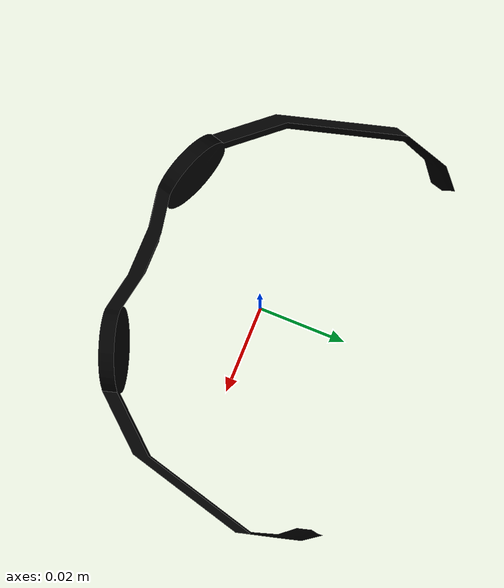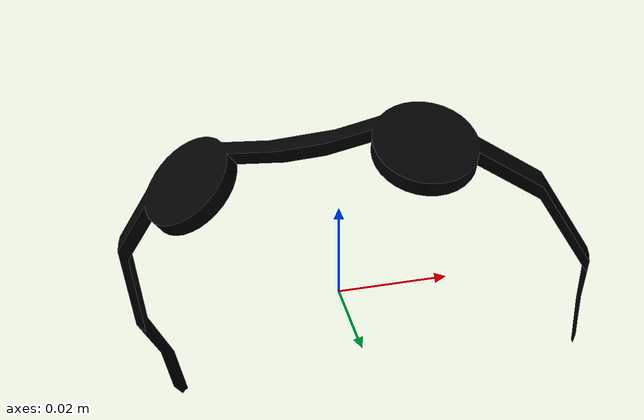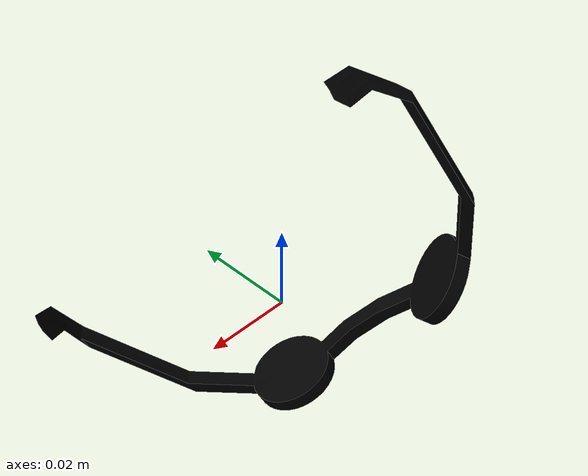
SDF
<?xml version="1.0" ?>

<sdf version="1.4">
  <model name="iai_glasses">
    <static>true</static>
    <link name="iai_glasses">
      <collision name="collision">
	<geometry>
            <mesh>
	      <uri>model://glasses/glasses.dae</uri>
	    </mesh>
          </geometry>
      </collision>
      <visual name="vis">
        <cast_shadows>false</cast_shadows>

	<geometry>
            <mesh>
	      <uri>model://glasses/glasses.dae</uri>
	    </mesh>
          </geometry>
      </visual>

    </link>
          <plugin name="scanable"
              filename="libiai_object_transmitter.so">
            <object_type>terrain</object_type><!-- this is used to determine -->
            <absolute_detection>true</absolute_detection>
            <attribute key="otype" value="glasses"/>
            <attribute key="manmade" value="true"/>
            <attribute key="navigation" value="inner"/>
      </plugin>
  </model>
</sdf>
